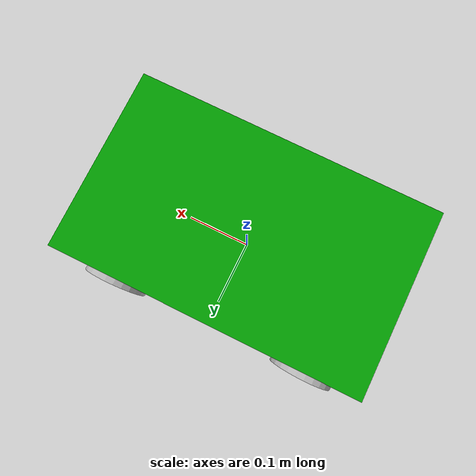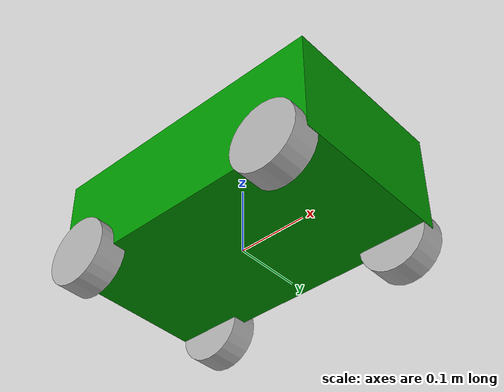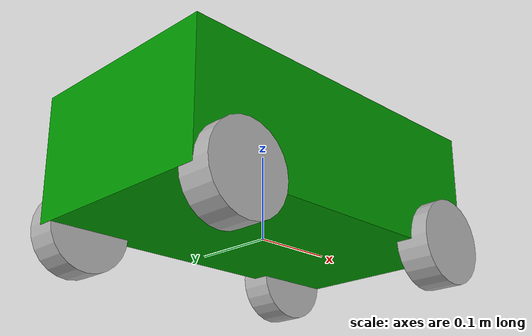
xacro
<?xml version="1.0"?>
<robot name="my_robot">

    <!-- Materials -->
    <material name="grey"><color rgba="0.7 0.7 0.7 1"/></material>
    <material name="green"><color rgba="0 0.6 0 1"/></material>
    <material name="red"><color rgba="1 0 0 1"/></material>
    <material name="blue"><color rgba="0 0 1 1"/></material>

    <!-- Base Link (center of robot) -->
    <link name="base_link">
        <visual>
            <geometry><box size="0.42 0.25 0.15"/></geometry>
            <origin xyz="0 0 0.0725" rpy="0 0 0"/>
            <material name="green"/>
        </visual>
    </link>

    <link name="back_left_wheel">
        <visual>
            <geometry>
                <cylinder radius="0.05" length="0.04"/>
            </geometry>
            <origin xyz="0 0 0" rpy="1.57 0 0"/>
            <material name="grey"/>
        </visual>
    </link>

    <link name="back_right_wheel">
        <visual>
            <geometry>
                <cylinder radius="0.05" length="0.04"/>
            </geometry>
            <origin xyz="0 0 0" rpy="1.57 0 0"/>
            <material name="grey"/>
        </visual>
    </link>

    <link name="front_right_wheel">
        <visual>
            <geometry>
                <cylinder radius="0.05" length="0.04"/>
            </geometry>
            <origin xyz="0 0 0" rpy="1.57 0 0"/>
            <material name="grey"/>
        </visual>
    </link>

    <link name="front_left_wheel">
        <visual>
            <geometry>
                <cylinder radius="0.05" length="0.04"/>
            </geometry>
            <origin xyz="0 0 0" rpy="1.57 0 0"/>
            <material name="grey"/>
        </visual>
    </link>

    <joint name="base_front_left_wheel_joint" type="continuous">
        <parent link="base_link" />
        <child link="front_left_wheel" />
        <origin xyz="0.16 0.125 0" rpy="0 0 0" />
        <axis xyz="0 1 0" />
    </joint>

    <joint name="base_front_right_wheel_joint" type="continuous">
        <parent link="base_link" />
        <child link="front_right_wheel" />
        <origin xyz="0.16 -0.125 0" rpy="0 0 0" />
        <axis xyz="0 1 0" />
    </joint>

    <joint name="base_back_left_wheel_joint" type="continuous">
        <parent link="base_link" />
        <child link="back_left_wheel" />
        <origin xyz="-0.16 0.125 0" rpy="0 0 0" />
        <axis xyz="0 1 0" />
    </joint>

    <joint name="base_back_right_wheel_joint" type="continuous">
        <parent link="base_link" />
        <child link="back_right_wheel" />
        <origin xyz="-0.16 -0.125 0" rpy="0 0 0" />
        <axis xyz="0 1 0" />
    </joint>

</robot>
